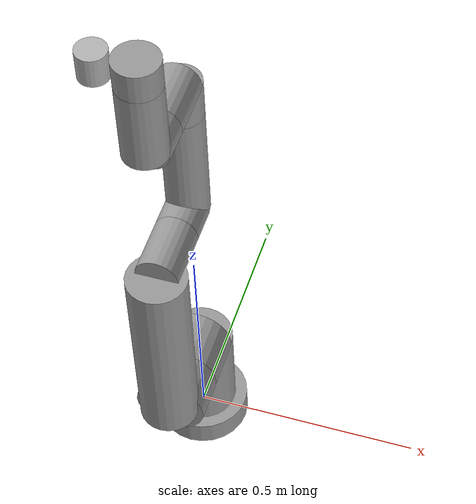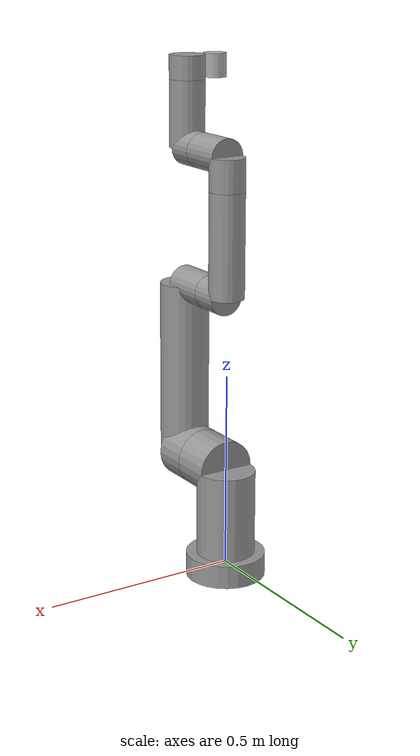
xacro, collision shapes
<?xml version="1.0" ?>
<robot name="indy7_eye" xmlns:xacro="http://ros.org/wiki/xacro">
	<xacro:include filename="$(find indy7_description)/urdf/materials.xacro"/>
	<xacro:include filename="$(find indy7_description)/urdf/indy7.gazebo"/>

	<xacro:property name="PI" value="3.1415926535897931"/>
	<xacro:property name="indy_material" value="metal_grey"/>

	<link name="link0">
		<visual>
			<origin xyz="0 0 0" rpy="0 0 0"/>
			<geometry>
				<mesh filename="package://indy7_description/meshes/stl/Indy7_0.stl"/>
			</geometry>
			<material name="${indy_material}"/>
		</visual>
		<collision>
			<origin xyz="0 0 0" rpy="0 0 0"/>
			<geometry>
				<cylinder length="0.06" radius="0.102"/>
			</geometry>
		</collision>
		<inertial>
			<origin xyz="0.00131966 -0.00000218 0.03212832" rpy="0 0 0"/>
			<mass value="1.67030785"/>
			<inertia ixx="+0.00661309" iyy="+0.00644765" izz="+0.00792090" ixy="+0.00000183" iyz="-0.00000027" ixz="+0.00002695"/>
		</inertial>
	</link>

	<link name="link1">
		<visual>
			<origin xyz="0 0 0" rpy="0 0 0"/>
			<geometry>
				<mesh filename="package://indy7_description/meshes/stl/Indy7_1.stl"/>
			</geometry>
			<material name="${indy_material}"/>
		</visual>
		<collision>
			<origin xyz="0 0 0.111" rpy="0 0 0"/>
			<geometry>
				<cylinder length="0.222" radius="0.075"/>
			</geometry>
		</collision>
		<collision>
			<origin xyz="0 -0.0545 0.222" rpy="${PI/2} 0 0"/>
			<geometry>
				<cylinder length="0.109" radius="0.075"/>
			</geometry>
		</collision>
		<inertial>
			<origin xyz="-0.00023749 -0.04310313 0.13245396" rpy="0 0 0"/>
			<mass value="11.44444535"/>
			<inertia ixx="+0.35065005" iyy="+0.30479800" izz="+0.06003147" ixy="+0.00011931" iyz="-0.10984447" ixz="-0.00037553"/>
		</inertial>
	</link>

	<link name="link2">
		<visual>
			<origin xyz="0 0 0" rpy="0 0 0"/>
			<geometry>
				<mesh filename="package://indy7_description/meshes/stl/Indy7_2.stl"/>
			</geometry>
			<material name="${indy_material}"/>
		</visual>
		<collision>
			<origin xyz="-0.225 0 0.09" rpy="${PI/2} 0 -${PI/2}"/>
			<geometry>
				<cylinder length="0.450" radius="0.063"/>
			</geometry>
		</collision>
		<collision>
			<origin xyz="0 0 0.045" rpy="0 0 0"/>
			<geometry>
				<cylinder length="0.09" radius="0.075"/>
			</geometry>
		</collision>
		<collision>
			<origin xyz="-0.45 0 0.02975 " rpy="0 0 0"/>
			<geometry>
				<cylinder length="0.1205" radius="0.045"/>
			</geometry>
		</collision>
		<inertial>
			<origin xyz="-0.29477536 -0.00002361 0.04762554" rpy="0 0 0"/>
			<mass value="5.84766553"/>
			<inertia ixx="+0.03599743" iyy="+0.72293306" izz="+0.70024119" ixy="-0.00004693" iyz="+0.00000176" ixz="-0.05240346"/>		</inertial>
	</link>

	<link name="link3">
		<visual>
			<origin xyz="0 0 0" rpy="0 0 0"/>
			<geometry>
				<mesh filename="package://indy7_description/meshes/stl/Indy7_3.stl"/>
			</geometry>
			<material name="${indy_material}"/>
		</visual>
		<collision>
			<origin xyz="-0.1335 0 -0.075" rpy="${PI/2} 0 -${PI/2}"/>
			<geometry>
				<cylinder length="0.267" radius="0.045"/>
			</geometry>
		</collision>
		<collision>
			<origin xyz="0 0 -0.0375" rpy="0 0 0"/>
			<geometry>
				<cylinder length="0.075" radius="0.045"/>
			</geometry>
		</collision>
		<inertial>
			<origin xyz="-0.16804016 0.00021421 -0.07000383" rpy="0 0 0"/>
			<mass value="2.68206064"/>
			<inertia ixx="+0.01617210" iyy="+0.11364055" izz="+0.10022522" ixy="-0.00011817" iyz="-0.00004371" ixz="+0.03341882"/>
		</inertial>
	</link>

	<link name="link4">
		<visual>
			<origin xyz="0 0 0" rpy="0 0 0"/>
			<geometry>
				<mesh filename="package://indy7_description/meshes/stl/Indy7_4.stl"/>
			</geometry>
			<material name="${indy_material}"/>
		</visual>
		<collision>
			<origin xyz="0 -0.057 0.083" rpy="${PI/2} 0 0"/>
			<geometry>
				<cylinder length="0.114" radius="0.045"/>
			</geometry>
		</collision>
		<collision>
			<origin xyz="0 -0.057 0.083" rpy="${PI/2} 0 0"/>
			<geometry>
				<cylinder length="0.114" radius="0.045"/>
			</geometry>
		</collision>
		<collision>
			<origin xyz="0 0 0.0415" rpy="0 0 0"/>
			<geometry>
				<cylinder length="0.083" radius="0.045"/>
			</geometry>
		</collision>
		<inertial>
			<origin xyz="-0.00026847 -0.07098440 0.07649128" rpy="0 0 0"/>
			<mass value="2.12987371"/>
			<inertia ixx="+0.02798891" iyy="+0.01443076" izz="+0.01496211" ixy="+0.00003893" iyz="-0.01266296" ixz="-0.00004768"/>
		</inertial>
	</link>

	<link name="link5">
		<visual>
			<origin xyz="0 0 0" rpy="0 0 0"/>
			<geometry>
				<mesh filename="package://indy7_description/meshes/stl/Indy7_5.stl"/>
			</geometry>
			<material name="${indy_material}"/>
		</visual>
		<collision>
			<origin xyz="-0.084 0 0.069" rpy="${PI/2} 0 -${PI/2}"/>
			<geometry>
				<cylinder length="0.168" radius="0.045"/>
			</geometry>
		</collision>
		<collision>
			<origin xyz="-0 0 0.0345" rpy="0 0 0"/>
			<geometry>
				<cylinder length="0.069" radius="0.045"/>
			</geometry>
		</collision>
		<inertial>
			<origin xyz="-0.09796232 -0.00023114 0.06445892" rpy="0 0 0"/>
			<mass value="2.22412271"/>
			<inertia ixx="+0.01105297" iyy="+0.03698291" izz="+0.02754795" ixy="+0.00005517" iyz="-0.00003740" ixz="-0.01481977"/>
		</inertial>
	</link>

	<link name="link6">
		<visual>
			<origin xyz="0 0 0" rpy="0 0 0"/>
			<geometry>
				<mesh filename="package://indy7_description/meshes/stl/Indy7_eye_6.stl"/>
			</geometry>
			<material name="${indy_material}"/>
		</visual>
		<collision>
			<origin xyz="0 0 0.03" rpy="0 0 0"/>
			<geometry>
				<cylinder length="0.06" radius="0.045"/>
			</geometry>
		</collision>
		<inertial>
			<origin xyz="0.00008147 -0.00046556 0.03079097" rpy="0 0 0"/>
			<mass value="0.38254932"/>
			<inertia ixx="+0.00078982" iyy="+0.00079764" izz="+0.00058319" ixy="-0.00000034" iyz="-0.00000508" ixz="+0.00000083"/>
		</inertial>
	</link>

	<link name="camera">
		<collision>
			<origin xyz="0 0 0.03" rpy="0 0 0"/>
			<geometry>
				<cylinder length="0.06" radius="0.03"/>
			</geometry>
		</collision>
		<inertial>
			<origin xyz="-0.03367995 0.00000829 0.02927357" rpy="0 0 0"/>
			<mass value="0.75567713"/>
			<inertia ixx="+0.00139931" iyy="+0.00339558" izz="+0.00283846" ixy="+0.00000029" iyz="+0.00000046" ixz="-0.00052678"/>
		</inertial>
	</link>

	<link name="tcp"/>

	<joint name="joint0" type="revolute">
		<parent link="link0"/>
		<child link="link1"/>
		<origin xyz="0 0 0.03000000" rpy="0 0 0"/>
		<axis xyz="0 0 1"/>
		<limit effort="10" velocity="1" lower="-${175*PI/180}" upper="${175*PI/180}"/>
	</joint>

	<joint name="joint1" type="revolute">
		<parent link="link1"/>
		<child link="link2"/>
		<origin xyz="0 -0.10900000 0.22200000" rpy="${PI/2} ${PI/2} 0"/>
		<axis xyz="0 0 1"/>
		<limit effort="10" velocity="1" lower="-${175*PI/180}" upper="${175*PI/180}"/>
	</joint>

	<joint name="joint2" type="revolute">
		<parent link="link2"/>
		<child link="link3"/>
		<origin xyz="-0.45000000 +0.00000000 -0.03050000" rpy="0 0 0"/>
		<axis xyz="0 0 1"/>
		<limit effort="10" velocity="1" lower="-${175*PI/180}" upper="${175*PI/180}"/>
	</joint>

	<joint name="joint3" type="revolute">
		<parent link="link3"/>
		<child link="link4"/>
		<origin xyz="-0.26700000 +0.00000000 -0.07500000" rpy="-${PI/2} 0 ${PI/2}"/>
		<axis xyz="0 0 1"/>
		<limit effort="10" velocity="1" lower="-${175*PI/180}" upper="${175*PI/180}"/>
	</joint>

	<joint name="joint4" type="revolute">
		<parent link="link4"/>
		<child link="link5"/>
		<origin xyz="+0.00000000 -0.11400000 +0.08300000" rpy="${PI/2} ${PI/2} 0"/>
		<axis xyz="0 0 1"/>
		<limit effort="10" velocity="1" lower="-${175*PI/180}" upper="${175*PI/180}"/>
	</joint>

	<joint name="joint5" type="revolute">
		<parent link="link5"/>
		<child link="link6"/>
		<origin xyz="-0.16800000 +0.00000000 +0.06900000" rpy="-${PI/2} 0 ${PI/2}"/>
		<axis xyz="0 0 1"/>
		<limit effort="10" velocity="1" lower="-${215*PI/180}" upper="${215*PI/180}"/>
	</joint>

	<joint name="camera" type="fixed">
		<parent link="link6"/>
		<child link="camera"/>
		<origin xyz="-0.08 0 0" rpy="0 0 0"/>
	</joint>

	<joint name="tcp" type="fixed">
		<parent link="link6"/>
		<child link="tcp"/>
		<origin xyz="0 0 0.06" rpy="0 0 0"/>
	</joint>

	<transmission name="tran0">
		<type>transmission_interface/SimpleTransmission</type>
		<joint name="joint0">
			<hardwareInterface>PositionJointInterface</hardwareInterface>
		</joint>
		<actuator name="motor0">
			<hardwareInterface>PositionJointInterface</hardwareInterface>
			<mechanicalReduction>1</mechanicalReduction>
		</actuator>
	</transmission>

	<transmission name="tran1">
		<type>transmission_interface/SimpleTransmission</type>
		<joint name="joint1">
			<hardwareInterface>PositionJointInterface</hardwareInterface>
		</joint>
		<actuator name="motor1">
			<hardwareInterface>PositionJointInterface</hardwareInterface>
			<mechanicalReduction>1</mechanicalReduction>
		</actuator>
	</transmission>

	<transmission name="tran2">
		<type>transmission_interface/SimpleTransmission</type>
		<joint name="joint2">
			<hardwareInterface>PositionJointInterface</hardwareInterface>
		</joint>
		<actuator name="motor2">
			<hardwareInterface>PositionJointInterface</hardwareInterface>
			<mechanicalReduction>1</mechanicalReduction>
		</actuator>
	</transmission>

	<transmission name="tran3">
		<type>transmission_interface/SimpleTransmission</type>
		<joint name="joint3">
			<hardwareInterface>PositionJointInterface</hardwareInterface>
		</joint>
		<actuator name="motor3">
			<hardwareInterface>PositionJointInterface</hardwareInterface>
			<mechanicalReduction>1</mechanicalReduction>
		</actuator>
	</transmission>

	<transmission name="tran4">
		<type>transmission_interface/SimpleTransmission</type>
		<joint name="joint4">
			<hardwareInterface>PositionJointInterface</hardwareInterface>
		</joint>
		<actuator name="motor4">
			<hardwareInterface>PositionJointInterface</hardwareInterface>
			<mechanicalReduction>1</mechanicalReduction>
		</actuator>
	</transmission>

	<transmission name="tran5">
		<type>transmission_interface/SimpleTransmission</type>
		<joint name="joint5">
			<hardwareInterface>PositionJointInterface</hardwareInterface>
		</joint>
		<actuator name="motor5">
			<hardwareInterface>PositionJointInterface</hardwareInterface>
			<mechanicalReduction>1</mechanicalReduction>
		</actuator>
	</transmission>

</robot>
